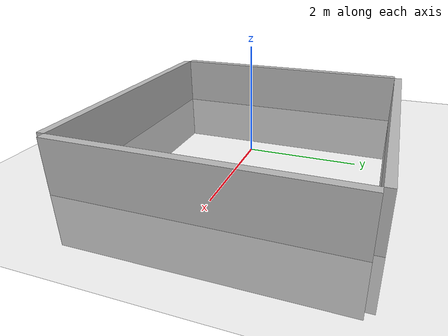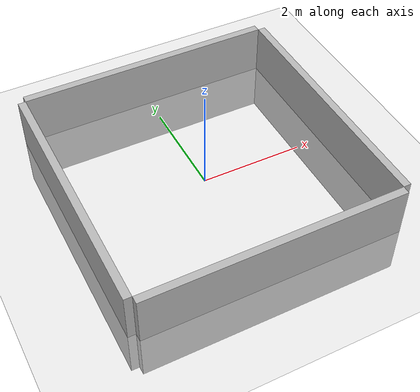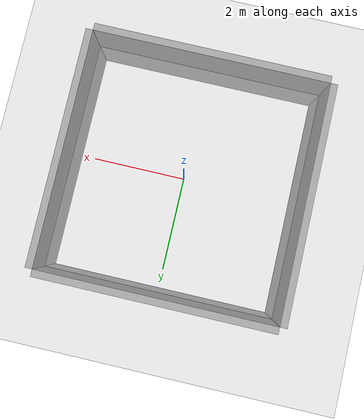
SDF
<sdf version='1.10'>
  <world name='walls'>
    <physics name='1ms' type='ignored'>
      <max_step_size>0.001</max_step_size>
      <real_time_factor>1</real_time_factor>
      <real_time_update_rate>1000</real_time_update_rate>
    </physics>
    <plugin name='gz::sim::systems::Physics' filename='gz-sim-physics-system'/>
    <plugin name='gz::sim::systems::UserCommands' filename='gz-sim-user-commands-system'/>
    <plugin name='gz::sim::systems::SceneBroadcaster' filename='gz-sim-scene-broadcaster-system'/>
    <plugin name='gz::sim::systems::Contact' filename='gz-sim-contact-system'/>
    <plugin name='gz::sim::systems::Sensors' filename='gz-sim-sensors-system'>
      <render_engine>ogre2</render_engine>
    </plugin>
    <gravity>0 0 -9.8000000000000007</gravity>
    <magnetic_field>5.5644999999999998e-06 2.2875799999999999e-05 -4.2388400000000002e-05</magnetic_field>
    <atmosphere type='adiabatic'/>
    <scene>
      <ambient>0.400000006 0.400000006 0.400000006 1</ambient>
      <background>0.699999988 0.699999988 0.699999988 1</background>
      <shadows>true</shadows>
    </scene>
    <model name='ground_plane'>
      <static>true</static>
      <link name='link'>
        <collision name='collision'>
          <geometry>
            <plane>
              <normal>0 0 1</normal>
              <size>100 100</size>
            </plane>
          </geometry>
          <surface>
            <friction>
              <ode/>
            </friction>
            <bounce/>
            <contact/>
          </surface>
        </collision>
        <visual name='visual'>
          <geometry>
            <plane>
              <normal>0 0 1</normal>
              <size>100 100</size>
            </plane>
          </geometry>
          <material>
            <ambient>0.800000012 0.800000012 0.800000012 1</ambient>
            <diffuse>0.800000012 0.800000012 0.800000012 1</diffuse>
            <specular>0.800000012 0.800000012 0.800000012 1</specular>
          </material>
        </visual>
        <pose>0 0 0 0 0 0</pose>
        <inertial>
          <pose>0 0 0 0 0 0</pose>
          <mass>1</mass>
          <inertia>
            <ixx>1</ixx>
            <ixy>0</ixy>
            <ixz>0</ixz>
            <iyy>1</iyy>
            <iyz>0</iyz>
            <izz>1</izz>
          </inertia>
        </inertial>
        <enable_wind>false</enable_wind>
      </link>
      <pose>0 0 0 0 0 0</pose>
      <self_collide>false</self_collide>
    </model>

    <model name="upper_wall">
      <static>true</static>
      <pose>2.575 0 0 0 0 0</pose>

      <link name="upper_link">
        <pose>0 0 0 0 0 0</pose>

        <collision name="upper_collision">
          <geometry>
            <box>
              <size>0.15 5.0 2.0</size>
            </box>
          </geometry>
        </collision>

        <visual name="upper_visual">
          <geometry>
            <box>
              <size>0.15 5.0 2.0</size>
            </box>
          </geometry>
        </visual>
      </link>
    </model>

    <model name="left_wall">
      <static>true</static>
      <pose>0 2.575 0 0 0 0</pose>

      <link name="left_link">
        <pose>0 0 0 0 0 0</pose>

        <collision name="left_collision">
          <geometry>
            <box>
              <size>5.0 0.15 2.0</size>
            </box>
          </geometry>
        </collision>

        <visual name="left_visual">
          <geometry>
            <box>
              <size>5.0 0.15 2.0</size>
            </box>
          </geometry>
        </visual>
      </link>
    </model>

    <model name="right_wall">
      <static>true</static>
      <pose>0 -2.575 0 0 0 0</pose>

      <link name="right_link">
        <pose>0 0 0 0 0 0</pose>

        <collision name="right_collision">
          <geometry>
            <box>
              <size>5.0 0.15 2.0</size>
            </box>
          </geometry>
        </collision>

        <visual name="right_visual">
          <geometry>
            <box>
              <size>5.0 0.15 2.0</size>
            </box>
          </geometry>
        </visual>
      </link>
    </model>

    <model name="lower_wall">
      <static>true</static>
      <pose>-2.575 0 0 0 0 0</pose>

      <link name="lower_link">
        <pose>0 0 0 0 0 0</pose>

        <collision name="lower_collision">
          <geometry>
            <box>
              <size>0.15 5.0 2.0</size>
            </box>
          </geometry>
        </collision>

        <visual name="lower_visual">
          <geometry>
            <box>
              <size>0.15 5.0 2.0</size>
            </box>
          </geometry>
        </visual>
      </link>
    </model>

    <light name='sun' type='directional'>
      <pose>0 0 10 0 0 0</pose>
      <cast_shadows>true</cast_shadows>
      <intensity>1</intensity>
      <direction>-0.5 0.10000000000000001 -0.90000000000000002</direction>
      <diffuse>0.800000012 0.800000012 0.800000012 1</diffuse>
      <specular>0.200000003 0.200000003 0.200000003 1</specular>
      <attenuation>
        <range>1000</range>
        <linear>0.01</linear>
        <constant>0.90000000000000002</constant>
        <quadratic>0.001</quadratic>
      </attenuation>
      <spot>
        <inner_angle>0</inner_angle>
        <outer_angle>0</outer_angle>
        <falloff>0</falloff>
      </spot>
    </light>
  </world>
</sdf>
